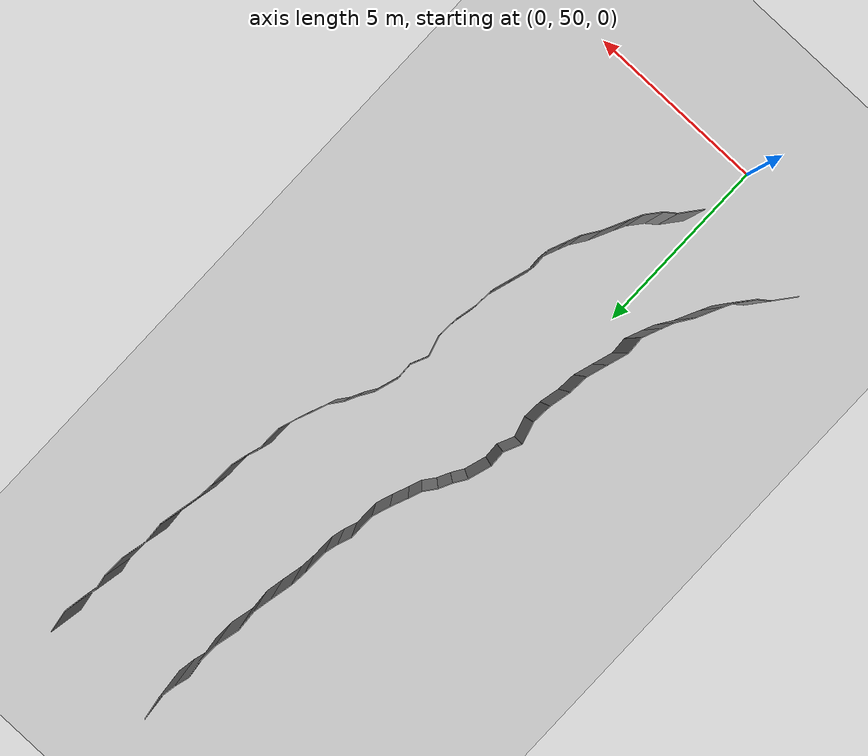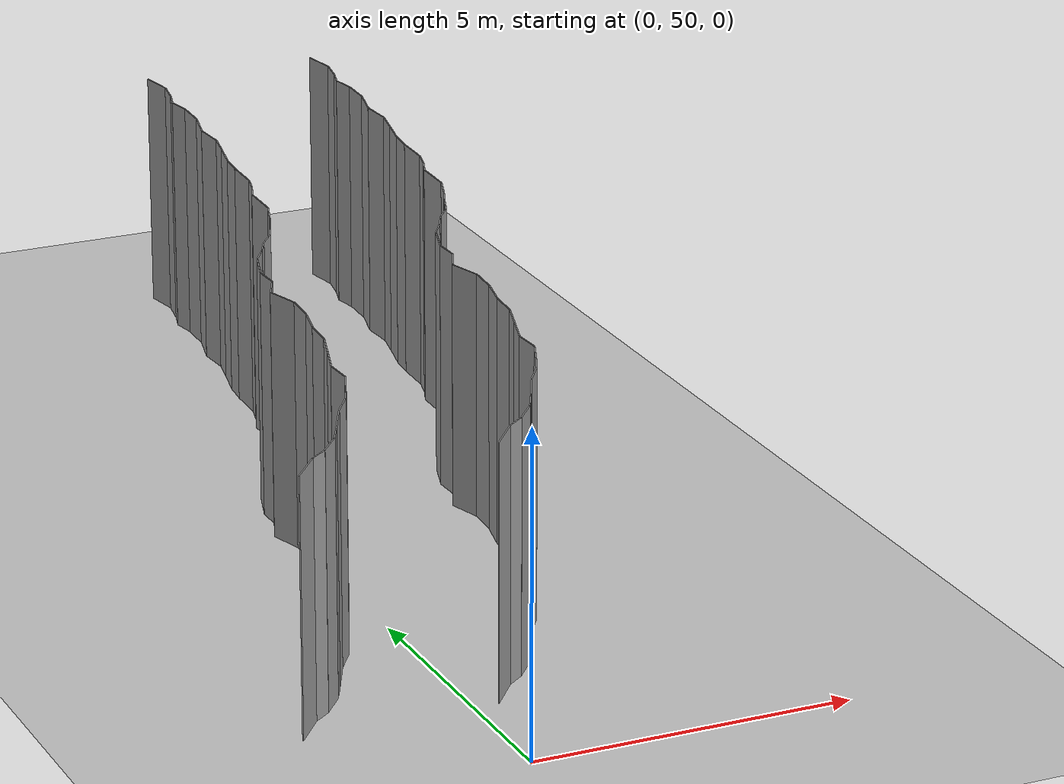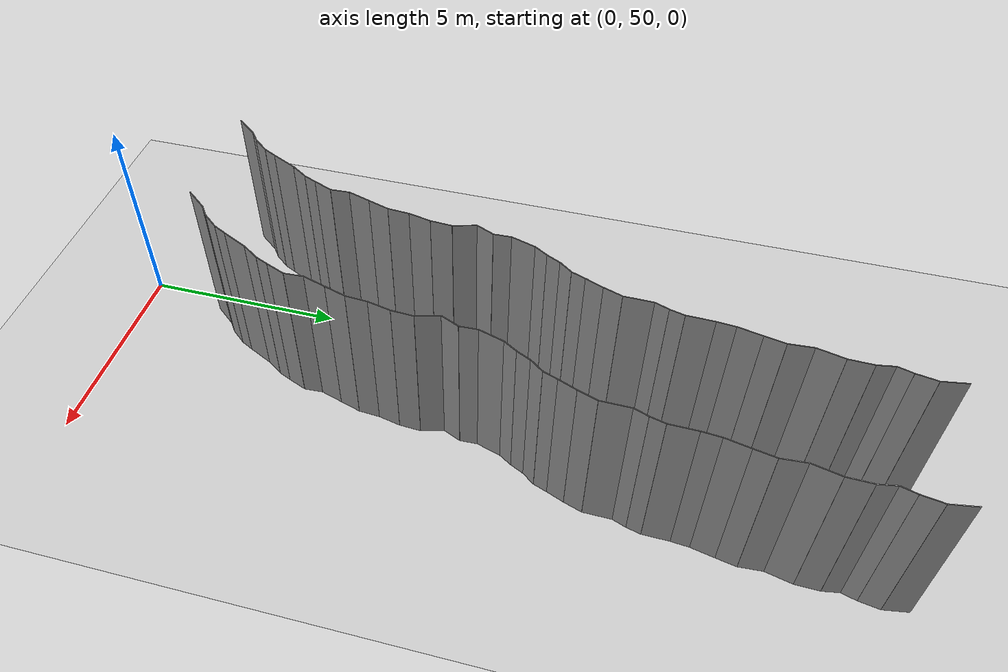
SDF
<sdf version="1.6">
 <world name="default">
  <model name="ground_plane">
   <static>1</static>
   <link name="link">
    <collision name="collision">
     <geometry><plane><normal>0 0 1</normal><size>200 200</size></plane></geometry>
     <surface><friction><ode><mu>100</mu><mu2>50</mu2></ode></friction></surface>
    </collision>
    <visual name="visual">
     <cast_shadows>0</cast_shadows>
     <geometry><plane><normal>0 0 1</normal><size>200 200</size></plane></geometry>
     <material>
      <script><uri>file://media/materials/scripts/gazebo.material</uri><name>Gazebo/Grey</name></script>
     </material>
    </visual>
   </link>
   <pose>0 100 0 0 -0 0</pose>
  </model>
  <model name="wall_224">
   <static>1</static>
   <pose>-2.3994176689398614 52.211991808700375 2 0 0 -0.6715285880857808</pose>
   <link name="link">
    <collision name="collision"><geometry><box><size>0.02 0.660935427679 4</size></box></geometry></collision>
    <visual name="visual">
     <material>
      <script><name>Gazebo/Grey</name><uri>file://media/materials/scripts/gazebo.material</uri></script>
     </material>
     <geometry><box><size>0.02 0.660935427679 4</size></box></geometry>
    </visual>
   </link>
  </model>
  <model name="wall_225">
   <static>1</static>
   <pose>0.6005823310601386 52.211991808700375 2 0 0 -0.6715285880857808</pose>
   <link name="link">
    <collision name="collision"><geometry><box><size>0.02 0.660935427679 4</size></box></geometry></collision>
    <visual name="visual">
     <material>
      <script><name>Gazebo/Grey</name><uri>file://media/materials/scripts/gazebo.material</uri></script>
     </material>
     <geometry><box><size>0.02 0.660935427679 4</size></box></geometry>
    </visual>
   </link>
  </model>
  <model name="wall_226">
   <static>1</static>
   <pose>-2.0620673733217263 52.57103883010184 2 0 0 -0.9199075902984098</pose>
   <link name="link">
    <collision name="collision"><geometry><box><size>0.02 0.331190981037 4</size></box></geometry></collision>
    <visual name="visual">
     <material>
      <script><name>Gazebo/Grey</name><uri>file://media/materials/scripts/gazebo.material</uri></script>
     </material>
     <geometry><box><size>0.02 0.331190981037 4</size></box></geometry>
    </visual>
   </link>
  </model>
  <model name="wall_227">
   <static>1</static>
   <pose>0.9379326266782737 52.57103883010184 2 0 0 -0.9199075902984098</pose>
   <link name="link">
    <collision name="collision"><geometry><box><size>0.02 0.331190981037 4</size></box></geometry></collision>
    <visual name="visual">
     <material>
      <script><name>Gazebo/Grey</name><uri>file://media/materials/scripts/gazebo.material</uri></script>
     </material>
     <geometry><box><size>0.02 0.331190981037 4</size></box></geometry>
    </visual>
   </link>
  </model>
  <model name="wall_228">
   <static>1</static>
   <pose>-1.7783138286931668 52.85751243669905 2 0 0 -0.6848217590931277</pose>
   <link name="link">
    <collision name="collision"><geometry><box><size>0.02 0.480652558105 4</size></box></geometry></collision>
    <visual name="visual">
     <material>
      <script><name>Gazebo/Grey</name><uri>file://media/materials/scripts/gazebo.material</uri></script>
     </material>
     <geometry><box><size>0.02 0.480652558105 4</size></box></geometry>
    </visual>
   </link>
  </model>
  <model name="wall_229">
   <static>1</static>
   <pose>1.2216861713068332 52.85751243669905 2 0 0 -0.6848217590931277</pose>
   <link name="link">
    <collision name="collision"><geometry><box><size>0.02 0.480652558105 4</size></box></geometry></collision>
    <visual name="visual">
     <material>
      <script><name>Gazebo/Grey</name><uri>file://media/materials/scripts/gazebo.material</uri></script>
     </material>
     <geometry><box><size>0.02 0.480652558105 4</size></box></geometry>
    </visual>
   </link>
  </model>
  <model name="wall_230">
   <static>1</static>
   <pose>-1.5460869767697503 53.20290195619431 2 0 0 -0.46659455117750903</pose>
   <link name="link">
    <collision name="collision"><geometry><box><size>0.02 0.356618992333 4</size></box></geometry></collision>
    <visual name="visual">
     <material>
      <script><name>Gazebo/Grey</name><uri>file://media/materials/scripts/gazebo.material</uri></script>
     </material>
     <geometry><box><size>0.02 0.356618992333 4</size></box></geometry>
    </visual>
   </link>
  </model>
  <model name="wall_231">
   <static>1</static>
   <pose>1.4539130232302497 53.20290195619431 2 0 0 -0.46659455117750903</pose>
   <link name="link">
    <collision name="collision"><geometry><box><size>0.02 0.356618992333 4</size></box></geometry></collision>
    <visual name="visual">
     <material>
      <script><name>Gazebo/Grey</name><uri>file://media/materials/scripts/gazebo.material</uri></script>
     </material>
     <geometry><box><size>0.02 0.356618992333 4</size></box></geometry>
    </visual>
   </link>
  </model>
  <model name="wall_232">
   <static>1</static>
   <pose>-1.3152750497182693 53.67421501934724 2 0 0 -0.44962529132112466</pose>
   <link name="link">
    <collision name="collision"><geometry><box><size>0.02 0.693005588197 4</size></box></geometry></collision>
    <visual name="visual">
     <material>
      <script><name>Gazebo/Grey</name><uri>file://media/materials/scripts/gazebo.material</uri></script>
     </material>
     <geometry><box><size>0.02 0.693005588197 4</size></box></geometry>
    </visual>
   </link>
  </model>
  <model name="wall_233">
   <static>1</static>
   <pose>1.6847249502817307 53.67421501934724 2 0 0 -0.44962529132112466</pose>
   <link name="link">
    <collision name="collision"><geometry><box><size>0.02 0.693005588197 4</size></box></geometry></collision>
    <visual name="visual">
     <material>
      <script><name>Gazebo/Grey</name><uri>file://media/materials/scripts/gazebo.material</uri></script>
     </material>
     <geometry><box><size>0.02 0.693005588197 4</size></box></geometry>
    </visual>
   </link>
  </model>
  <model name="wall_234">
   <static>1</static>
   <pose>-1.029204470216929 54.18834172617757 2 0 0 -0.5906094558521587</pose>
   <link name="link">
    <collision name="collision"><geometry><box><size>0.02 0.486545785832 4</size></box></geometry></collision>
    <visual name="visual">
     <material>
      <script><name>Gazebo/Grey</name><uri>file://media/materials/scripts/gazebo.material</uri></script>
     </material>
     <geometry><box><size>0.02 0.486545785832 4</size></box></geometry>
    </visual>
   </link>
  </model>
  <model name="wall_235">
   <static>1</static>
   <pose>1.970795529783071 54.18834172617757 2 0 0 -0.5906094558521587</pose>
   <link name="link">
    <collision name="collision"><geometry><box><size>0.02 0.486545785832 4</size></box></geometry></collision>
    <visual name="visual">
     <material>
      <script><name>Gazebo/Grey</name><uri>file://media/materials/scripts/gazebo.material</uri></script>
     </material>
     <geometry><box><size>0.02 0.486545785832 4</size></box></geometry>
    </visual>
   </link>
  </model>
  <model name="wall_236">
   <static>1</static>
   <pose>-0.8254921138399317 54.5490444959066 2 0 0 -0.4062387491988969</pose>
   <link name="link">
    <collision name="collision"><geometry><box><size>0.02 0.345389949568 4</size></box></geometry></collision>
    <visual name="visual">
     <material>
      <script><name>Gazebo/Grey</name><uri>file://media/materials/scripts/gazebo.material</uri></script>
     </material>
     <geometry><box><size>0.02 0.345389949568 4</size></box></geometry>
    </visual>
   </link>
  </model>
  <model name="wall_237">
   <static>1</static>
   <pose>2.174507886160068 54.5490444959066 2 0 0 -0.4062387491988969</pose>
   <link name="link">
    <collision name="collision"><geometry><box><size>0.02 0.345389949568 4</size></box></geometry></collision>
    <visual name="visual">
     <material>
      <script><name>Gazebo/Grey</name><uri>file://media/materials/scripts/gazebo.material</uri></script>
     </material>
     <geometry><box><size>0.02 0.345389949568 4</size></box></geometry>
    </visual>
   </link>
  </model>
  <model name="wall_238">
   <static>1</static>
   <pose>-0.6621759070944445 54.94048579975645 2 0 0 -0.3877212224720648</pose>
   <link name="link">
    <collision name="collision"><geometry><box><size>0.02 0.502933970677 4</size></box></geometry></collision>
    <visual name="visual">
     <material>
      <script><name>Gazebo/Grey</name><uri>file://media/materials/scripts/gazebo.material</uri></script>
     </material>
     <geometry><box><size>0.02 0.502933970677 4</size></box></geometry>
    </visual>
   </link>
  </model>
  <model name="wall_239">
   <static>1</static>
   <pose>2.3378240929055556 54.94048579975645 2 0 0 -0.3877212224720648</pose>
   <link name="link">
    <collision name="collision"><geometry><box><size>0.02 0.502933970677 4</size></box></geometry></collision>
    <visual name="visual">
     <material>
      <script><name>Gazebo/Grey</name><uri>file://media/materials/scripts/gazebo.material</uri></script>
     </material>
     <geometry><box><size>0.02 0.502933970677 4</size></box></geometry>
    </visual>
   </link>
  </model>
  <model name="wall_240">
   <static>1</static>
   <pose>-0.5793212029630783 55.4080281731289 2 0 0 0.05200989084188044</pose>
   <link name="link">
    <collision name="collision"><geometry><box><size>0.02 0.47011774229 4</size></box></geometry></collision>
    <visual name="visual">
     <material>
      <script><name>Gazebo/Grey</name><uri>file://media/materials/scripts/gazebo.material</uri></script>
     </material>
     <geometry><box><size>0.02 0.47011774229 4</size></box></geometry>
    </visual>
   </link>
  </model>
  <model name="wall_241">
   <static>1</static>
   <pose>2.4206787970369215 55.4080281731289 2 0 0 0.05200989084188044</pose>
   <link name="link">
    <collision name="collision"><geometry><box><size>0.02 0.47011774229 4</size></box></geometry></collision>
    <visual name="visual">
     <material>
      <script><name>Gazebo/Grey</name><uri>file://media/materials/scripts/gazebo.material</uri></script>
     </material>
     <geometry><box><size>0.02 0.47011774229 4</size></box></geometry>
    </visual>
   </link>
  </model>
  <model name="wall_242">
   <static>1</static>
   <pose>-0.5043435268382849 55.922222398369854 2 0 0 -0.30245587119576883</pose>
   <link name="link">
    <collision name="collision"><geometry><box><size>0.02 0.58548272599 4</size></box></geometry></collision>
    <visual name="visual">
     <material>
      <script><name>Gazebo/Grey</name><uri>file://media/materials/scripts/gazebo.material</uri></script>
     </material>
     <geometry><box><size>0.02 0.58548272599 4</size></box></geometry>
    </visual>
   </link>
  </model>
  <model name="wall_243">
   <static>1</static>
   <pose>2.495656473161715 55.922222398369854 2 0 0 -0.30245587119576883</pose>
   <link name="link">
    <collision name="collision"><geometry><box><size>0.02 0.58548272599 4</size></box></geometry></collision>
    <visual name="visual">
     <material>
      <script><name>Gazebo/Grey</name><uri>file://media/materials/scripts/gazebo.material</uri></script>
     </material>
     <geometry><box><size>0.02 0.58548272599 4</size></box></geometry>
    </visual>
   </link>
  </model>
  <model name="wall_244">
   <static>1</static>
   <pose>-0.33619189387096793 56.46374155675779 2 0 0 -0.29960844605336207</pose>
   <link name="link">
    <collision name="collision"><geometry><box><size>0.02 0.54856951546 4</size></box></geometry></collision>
    <visual name="visual">
     <material>
      <script><name>Gazebo/Grey</name><uri>file://media/materials/scripts/gazebo.material</uri></script>
     </material>
     <geometry><box><size>0.02 0.54856951546 4</size></box></geometry>
    </visual>
   </link>
  </model>
  <model name="wall_245">
   <static>1</static>
   <pose>2.663808106129032 56.46374155675779 2 0 0 -0.29960844605336207</pose>
   <link name="link">
    <collision name="collision"><geometry><box><size>0.02 0.54856951546 4</size></box></geometry></collision>
    <visual name="visual">
     <material>
      <script><name>Gazebo/Grey</name><uri>file://media/materials/scripts/gazebo.material</uri></script>
     </material>
     <geometry><box><size>0.02 0.54856951546 4</size></box></geometry>
    </visual>
   </link>
  </model>
  <model name="wall_246">
   <static>1</static>
   <pose>-0.2365675665083288 56.99141143088639 2 0 0 -0.07017812733628209</pose>
   <link name="link">
    <collision name="collision"><geometry><box><size>0.02 0.532518618255 4</size></box></geometry></collision>
    <visual name="visual">
     <material>
      <script><name>Gazebo/Grey</name><uri>file://media/materials/scripts/gazebo.material</uri></script>
     </material>
     <geometry><box><size>0.02 0.532518618255 4</size></box></geometry>
    </visual>
   </link>
  </model>
  <model name="wall_247">
   <static>1</static>
   <pose>2.7634324334916713 56.99141143088639 2 0 0 -0.07017812733628209</pose>
   <link name="link">
    <collision name="collision"><geometry><box><size>0.02 0.532518618255 4</size></box></geometry></collision>
    <visual name="visual">
     <material>
      <script><name>Gazebo/Grey</name><uri>file://media/materials/scripts/gazebo.material</uri></script>
     </material>
     <geometry><box><size>0.02 0.532518618255 4</size></box></geometry>
    </visual>
   </link>
  </model>
  <model name="wall_248">
   <static>1</static>
   <pose>-0.15761270786326534 57.53592670218643 2 0 0 -0.2128679786448468</pose>
   <link name="link">
    <collision name="collision"><geometry><box><size>0.02 0.570704046467 4</size></box></geometry></collision>
    <visual name="visual">
     <material>
      <script><name>Gazebo/Grey</name><uri>file://media/materials/scripts/gazebo.material</uri></script>
     </material>
     <geometry><box><size>0.02 0.570704046467 4</size></box></geometry>
    </visual>
   </link>
  </model>
  <model name="wall_249">
   <static>1</static>
   <pose>2.842387292136735 57.53592670218643 2 0 0 -0.2128679786448468</pose>
   <link name="link">
    <collision name="collision"><geometry><box><size>0.02 0.570704046467 4</size></box></geometry></collision>
    <visual name="visual">
     <material>
      <script><name>Gazebo/Grey</name><uri>file://media/materials/scripts/gazebo.material</uri></script>
     </material>
     <geometry><box><size>0.02 0.570704046467 4</size></box></geometry>
    </visual>
   </link>
  </model>
  <model name="wall_250">
   <static>1</static>
   <pose>-0.08074077265795965 58.083341451052256 2 0 0 -0.06169854668923906</pose>
   <link name="link">
    <collision name="collision"><geometry><box><size>0.02 0.538030530952 4</size></box></geometry></collision>
    <visual name="visual">
     <material>
      <script><name>Gazebo/Grey</name><uri>file://media/materials/scripts/gazebo.material</uri></script>
     </material>
     <geometry><box><size>0.02 0.538030530952 4</size></box></geometry>
    </visual>
   </link>
  </model>
  <model name="wall_251">
   <static>1</static>
   <pose>2.9192592273420406 58.083341451052256 2 0 0 -0.06169854668923906</pose>
   <link name="link">
    <collision name="collision"><geometry><box><size>0.02 0.538030530952 4</size></box></geometry></collision>
    <visual name="visual">
     <material>
      <script><name>Gazebo/Grey</name><uri>file://media/materials/scripts/gazebo.material</uri></script>
     </material>
     <geometry><box><size>0.02 0.538030530952 4</size></box></geometry>
    </visual>
   </link>
  </model>
  <model name="wall_252">
   <static>1</static>
   <pose>-0.14494923535174797 58.62981228608255 2 0 0 0.28287198370729333</pose>
   <link name="link">
    <collision name="collision"><geometry><box><size>0.02 0.578943368254 4</size></box></geometry></collision>
    <visual name="visual">
     <material>
      <script><name>Gazebo/Grey</name><uri>file://media/materials/scripts/gazebo.material</uri></script>
     </material>
     <geometry><box><size>0.02 0.578943368254 4</size></box></geometry>
    </visual>
   </link>
  </model>
  <model name="wall_253">
   <static>1</static>
   <pose>2.855050764648252 58.62981228608255 2 0 0 0.28287198370729333</pose>
   <link name="link">
    <collision name="collision"><geometry><box><size>0.02 0.578943368254 4</size></box></geometry></collision>
    <visual name="visual">
     <material>
      <script><name>Gazebo/Grey</name><uri>file://media/materials/scripts/gazebo.material</uri></script>
     </material>
     <geometry><box><size>0.02 0.578943368254 4</size></box></geometry>
    </visual>
   </link>
  </model>
  <model name="wall_254">
   <static>1</static>
   <pose>-0.12595361144937484 59.12698884295465 2 0 0 -0.4271978578690917</pose>
   <link name="link">
    <collision name="collision"><geometry><box><size>0.02 0.48170930138 4</size></box></geometry></collision>
    <visual name="visual">
     <material>
      <script><name>Gazebo/Grey</name><uri>file://media/materials/scripts/gazebo.material</uri></script>
     </material>
     <geometry><box><size>0.02 0.48170930138 4</size></box></geometry>
    </visual>
   </link>
  </model>
  <model name="wall_255">
   <static>1</static>
   <pose>2.8740463885506253 59.12698884295465 2 0 0 -0.4271978578690917</pose>
   <link name="link">
    <collision name="collision"><geometry><box><size>0.02 0.48170930138 4</size></box></geometry></collision>
    <visual name="visual">
     <material>
      <script><name>Gazebo/Grey</name><uri>file://media/materials/scripts/gazebo.material</uri></script>
     </material>
     <geometry><box><size>0.02 0.48170930138 4</size></box></geometry>
    </visual>
   </link>
  </model>
  <model name="wall_256">
   <static>1</static>
   <pose>-0.03470344439655227 59.56204394707187 2 0 0 0.0395503670361402</pose>
   <link name="link">
    <collision name="collision"><geometry><box><size>0.02 0.432029825355 4</size></box></geometry></collision>
    <visual name="visual">
     <material>
      <script><name>Gazebo/Grey</name><uri>file://media/materials/scripts/gazebo.material</uri></script>
     </material>
     <geometry><box><size>0.02 0.432029825355 4</size></box></geometry>
    </visual>
   </link>
  </model>
  <model name="wall_257">
   <static>1</static>
   <pose>2.9652965556034476 59.56204394707187 2 0 0 0.0395503670361402</pose>
   <link name="link">
    <collision name="collision"><geometry><box><size>0.02 0.432029825355 4</size></box></geometry></collision>
    <visual name="visual">
     <material>
      <script><name>Gazebo/Grey</name><uri>file://media/materials/scripts/gazebo.material</uri></script>
     </material>
     <geometry><box><size>0.02 0.432029825355 4</size></box></geometry>
    </visual>
   </link>
  </model>
  <model name="wall_258">
   <static>1</static>
   <pose>0.04950261593765298 60.07542139169327 2 0 0 -0.3021765440559707</pose>
   <link name="link">
    <collision name="collision"><geometry><box><size>0.02 0.623304198377 4</size></box></geometry></collision>
    <visual name="visual">
     <material>
      <script><name>Gazebo/Grey</name><uri>file://media/materials/scripts/gazebo.material</uri></script>
     </material>
     <geometry><box><size>0.02 0.623304198377 4</size></box></geometry>
    </visual>
   </link>
  </model>
  <model name="wall_259">
   <static>1</static>
   <pose>3.049502615937653 60.07542139169327 2 0 0 -0.3021765440559707</pose>
   <link name="link">
    <collision name="collision"><geometry><box><size>0.02 0.623304198377 4</size></box></geometry></collision>
    <visual name="visual">
     <material>
      <script><name>Gazebo/Grey</name><uri>file://media/materials/scripts/gazebo.material</uri></script>
     </material>
     <geometry><box><size>0.02 0.623304198377 4</size></box></geometry>
    </visual>
   </link>
  </model>
  <model name="wall_260">
   <static>1</static>
   <pose>0.24195621437413084 60.53049637044076 2 0 0 -0.5642464686701131</pose>
   <link name="link">
    <collision name="collision"><geometry><box><size>0.02 0.372887684108 4</size></box></geometry></collision>
    <visual name="visual">
     <material>
      <script><name>Gazebo/Grey</name><uri>file://media/materials/scripts/gazebo.material</uri></script>
     </material>
     <geometry><box><size>0.02 0.372887684108 4</size></box></geometry>
    </visual>
   </link>
  </model>
  <model name="wall_261">
   <static>1</static>
   <pose>3.241956214374131 60.53049637044076 2 0 0 -0.5642464686701131</pose>
   <link name="link">
    <collision name="collision"><geometry><box><size>0.02 0.372887684108 4</size></box></geometry></collision>
    <visual name="visual">
     <material>
      <script><name>Gazebo/Grey</name><uri>file://media/materials/scripts/gazebo.material</uri></script>
     </material>
     <geometry><box><size>0.02 0.372887684108 4</size></box></geometry>
    </visual>
   </link>
  </model>
  <model name="wall_262">
   <static>1</static>
   <pose>0.42297124363763994 60.853765168636535 2 0 0 -0.4561183947226941</pose>
   <link name="link">
    <collision name="collision"><geometry><box><size>0.02 0.369193596141 4</size></box></geometry></collision>
    <visual name="visual">
     <material>
      <script><name>Gazebo/Grey</name><uri>file://media/materials/scripts/gazebo.material</uri></script>
     </material>
     <geometry><box><size>0.02 0.369193596141 4</size></box></geometry>
    </visual>
   </link>
  </model>
  <model name="wall_263">
   <static>1</static>
   <pose>3.42297124363764 60.853765168636535 2 0 0 -0.4561183947226941</pose>
   <link name="link">
    <collision name="collision"><geometry><box><size>0.02 0.369193596141 4</size></box></geometry></collision>
    <visual name="visual">
     <material>
      <script><name>Gazebo/Grey</name><uri>file://media/materials/scripts/gazebo.material</uri></script>
     </material>
     <geometry><box><size>0.02 0.369193596141 4</size></box></geometry>
    </visual>
   </link>
  </model>
  <model name="wall_264">
   <static>1</static>
   <pose>0.6213531830424113 61.172838999744066 2 0 0 -0.6520506079284731</pose>
   <link name="link">
    <collision name="collision"><geometry><box><size>0.02 0.3858596344 4</size></box></geometry></collision>
    <visual name="visual">
     <material>
      <script><name>Gazebo/Grey</name><uri>file://media/materials/scripts/gazebo.material</uri></script>
     </material>
     <geometry><box><size>0.02 0.3858596344 4</size></box></geometry>
    </visual>
   </link>
  </model>
  <model name="wall_265">
   <static>1</static>
   <pose>3.6213531830424115 61.172838999744066 2 0 0 -0.6520506079284731</pose>
   <link name="link">
    <collision name="collision"><geometry><box><size>0.02 0.3858596344 4</size></box></geometry></collision>
    <visual name="visual">
     <material>
      <script><name>Gazebo/Grey</name><uri>file://media/materials/scripts/gazebo.material</uri></script>
     </material>
     <geometry><box><size>0.02 0.3858596344 4</size></box></geometry>
    </visual>
   </link>
  </model>
  <model name="wall_266">
   <static>1</static>
   <pose>0.8006976944177646 61.49390780209888 2 0 0 -0.3555060043697351</pose>
   <link name="link">
    <collision name="collision"><geometry><box><size>0.02 0.357814462842 4</size></box></geometry></collision>
    <visual name="visual">
     <material>
      <script><name>Gazebo/Grey</name><uri>file://media/materials/scripts/gazebo.material</uri></script>
     </material>
     <geometry><box><size>0.02 0.357814462842 4</size></box></geometry>
    </visual>
   </link>
  </model>
  <model name="wall_267">
   <static>1</static>
   <pose>3.8006976944177646 61.49390780209888 2 0 0 -0.3555060043697351</pose>
   <link name="link">
    <collision name="collision"><geometry><box><size>0.02 0.357814462842 4</size></box></geometry></collision>
    <visual name="visual">
     <material>
      <script><name>Gazebo/Grey</name><uri>file://media/materials/scripts/gazebo.material</uri></script>
     </material>
     <geometry><box><size>0.02 0.357814462842 4</size></box></geometry>
    </visual>
   </link>
  </model>
  <model name="wall_268">
   <static>1</static>
   <pose>0.9506513653324831 61.87659043294358 2 0 0 -0.38729496643015454</pose>
   <link name="link">
    <collision name="collision"><geometry><box><size>0.02 0.464314646622 4</size></box></geometry></collision>
    <visual name="visual">
     <material>
      <script><name>Gazebo/Grey</name><uri>file://media/materials/scripts/gazebo.material</uri></script>
     </material>
     <geometry><box><size>0.02 0.464314646622 4</size></box></geometry>
    </visual>
   </link>
  </model>
  <model name="wall_269">
   <static>1</static>
   <pose>3.950651365332483 61.87659043294358 2 0 0 -0.38729496643015454</pose>
   <link name="link">
    <collision name="collision"><geometry><box><size>0.02 0.464314646622 4</size></box></geometry></collision>
    <visual name="visual">
     <material>
      <script><name>Gazebo/Grey</name><uri>file://media/materials/scripts/gazebo.material</uri></script>
     </material>
     <geometry><box><size>0.02 0.464314646622 4</size></box></geometry>
    </visual>
   </link>
  </model>
  <model name="wall_270">
   <static>1</static>
   <pose>1.1159555542005344 62.31704942219688 2 0 0 -0.3315218221681233</pose>
   <link name="link">
    <collision name="collision"><geometry><box><size>0.02 0.476964851913 4</size></box></geometry></collision>
    <visual name="visual">
     <material>
      <script><name>Gazebo/Grey</name><uri>file://media/materials/scripts/gazebo.material</uri></script>
     </material>
     <geometry><box><size>0.02 0.476964851913 4</size></box></geometry>
    </visual>
   </link>
  </model>
  <model name="wall_271">
   <static>1</static>
   <pose>4.115955554200534 62.31704942219688 2 0 0 -0.3315218221681233</pose>
   <link name="link">
    <collision name="collision"><geometry><box><size>0.02 0.476964851913 4</size></box></geometry></collision>
    <visual name="visual">
     <material>
      <script><name>Gazebo/Grey</name><uri>file://media/materials/scripts/gazebo.material</uri></script>
     </material>
     <geometry><box><size>0.02 0.476964851913 4</size></box></geometry>
    </visual>
   </link>
  </model>
  <model name="wall_272">
   <static>1</static>
   <pose>1.1982326444536933 62.89120408575837 2 0 0 -0.01335116327255412</pose>
   <link name="link">
    <collision name="collision"><geometry><box><size>0.02 0.697378265888 4</size></box></geometry></collision>
    <visual name="visual">
     <material>
      <script><name>Gazebo/Grey</name><uri>file://media/materials/scripts/gazebo.material</uri></script>
     </material>
     <geometry><box><size>0.02 0.697378265888 4</size></box></geometry>
    </visual>
   </link>
  </model>
  <model name="wall_273">
   <static>1</static>
   <pose>4.198232644453693 62.89120408575837 2 0 0 -0.01335116327255412</pose>
   <link name="link">
    <collision name="collision"><geometry><box><size>0.02 0.697378265888 4</size></box></geometry></collision>
    <visual name="visual">
     <material>
      <script><name>Gazebo/Grey</name><uri>file://media/materials/scripts/gazebo.material</uri></script>
     </material>
     <geometry><box><size>0.02 0.697378265888 4</size></box></geometry>
    </visual>
   </link>
  </model>
  <model name="wall_274">
   <static>1</static>
   <pose>1.2661166223406954 63.40591524918278 2 0 0 -0.3638231975718272</pose>
   <link name="link">
    <collision name="collision"><geometry><box><size>0.02 0.355367440151 4</size></box></geometry></collision>
    <visual name="visual">
     <material>
      <script><name>Gazebo/Grey</name><uri>file://media/materials/scripts/gazebo.material</uri></script>
     </material>
     <geometry><box><size>0.02 0.355367440151 4</size></box></geometry>
    </visual>
   </link>
  </model>
  <model name="wall_275">
   <static>1</static>
   <pose>4.266116622340696 63.40591524918278 2 0 0 -0.3638231975718272</pose>
   <link name="link">
    <collision name="collision"><geometry><box><size>0.02 0.355367440151 4</size></box></geometry></collision>
    <visual name="visual">
     <material>
      <script><name>Gazebo/Grey</name><uri>file://media/materials/scripts/gazebo.material</uri></script>
     </material>
     <geometry><box><size>0.02 0.355367440151 4</size></box></geometry>
    </visual>
   </link>
  </model>
  <model name="wall_276">
   <static>1</static>
   <pose>1.373709563535702 63.74624722771021 2 0 0 -0.24926473016041226</pose>
   <link name="link">
    <collision name="collision"><geometry><box><size>0.02 0.359673795644 4</size></box></geometry></collision>
    <visual name="visual">
     <material>
      <script><name>Gazebo/Grey</name><uri>file://media/materials/scripts/gazebo.material</uri></script>
     </material>
     <geometry><box><size>0.02 0.359673795644 4</size></box></geometry>
    </visual>
   </link>
  </model>
  <model name="wall_277">
   <static>1</static>
   <pose>4.3737095635357015 63.74624722771021 2 0 0 -0.24926473016041226</pose>
   <link name="link">
    <collision name="collision"><geometry><box><size>0.02 0.359673795644 4</size></box></geometry></collision>
    <visual name="visual">
     <material>
      <script><name>Gazebo/Grey</name><uri>file://media/materials/scripts/gazebo.material</uri></script>
     </material>
     <geometry><box><size>0.02 0.359673795644 4</size></box></geometry>
    </visual>
   </link>
  </model>
  <model name="wall_278">
   <static>1</static>
   <pose>1.424861053885441 64.24713491516601 2 0 0 -0.0207780154309592</pose>
   <link name="link">
    <collision name="collision"><geometry><box><size>0.02 0.653358663836 4</size></box></geometry></collision>
    <visual name="visual">
     <material>
      <script><name>Gazebo/Grey</name><uri>file://media/materials/scripts/gazebo.material</uri></script>
     </material>
     <geometry><box><size>0.02 0.653358663836 4</size></box></geometry>
    </visual>
   </link>
  </model>
  <model name="wall_279">
   <static>1</static>
   <pose>4.424861053885441 64.24713491516601 2 0 0 -0.0207780154309592</pose>
   <link name="link">
    <collision name="collision"><geometry><box><size>0.02 0.653358663836 4</size></box></geometry></collision>
    <visual name="visual">
     <material>
      <script><name>Gazebo/Grey</name><uri>file://media/materials/scripts/gazebo.material</uri></script>
     </material>
     <geometry><box><size>0.02 0.653358663836 4</size></box></geometry>
    </visual>
   </link>
  </model>
  <model name="wall_280">
   <static>1</static>
   <pose>1.4511529160385608 64.79121483362832 2 0 0 -0.08944891951584462</pose>
   <link name="link">
    <collision name="collision"><geometry><box><size>0.02 0.43668803376 4</size></box></geometry></collision>
    <visual name="visual">
     <material>
      <script><name>Gazebo/Grey</name><uri>file://media/materials/scripts/gazebo.material</uri></script>
     </material>
     <geometry><box><size>0.02 0.43668803376 4</size></box></geometry>
    </visual>
   </link>
  </model>
  <model name="wall_281">
   <static>1</static>
   <pose>4.451152916038561 64.79121483362832 2 0 0 -0.08944891951584462</pose>
   <link name="link">
    <collision name="collision"><geometry><box><size>0.02 0.43668803376 4</size></box></geometry></collision>
    <visual name="visual">
     <material>
      <script><name>Gazebo/Grey</name><uri>file://media/materials/scripts/gazebo.material</uri></script>
     </material>
     <geometry><box><size>0.02 0.43668803376 4</size></box></geometry>
    </visual>
   </link>
  </model>
  <model name="wall_282">
   <static>1</static>
   <pose>1.5310217844237053 65.2912903274743 2 0 0 -0.21043752291661758</pose>
   <link name="link">
    <collision name="collision"><geometry><box><size>0.02 0.577958776794 4</size></box></geometry></collision>
    <visual name="visual">
     <material>
      <script><name>Gazebo/Grey</name><uri>file://media/materials/scripts/gazebo.material</uri></script>
     </material>
     <geometry><box><size>0.02 0.577958776794 4</size></box></geometry>
    </visual>
   </link>
  </model>
  <model name="wall_283">
   <static>1</static>
   <pose>4.5310217844237055 65.2912903274743 2 0 0 -0.21043752291661758</pose>
   <link name="link">
    <collision name="collision"><geometry><box><size>0.02 0.577958776794 4</size></box></geometry></collision>
    <visual name="visual">
     <material>
      <script><name>Gazebo/Grey</name><uri>file://media/materials/scripts/gazebo.material</uri></script>
     </material>
     <geometry><box><size>0.02 0.577958776794 4</size></box></geometry>
    </visual>
   </link>
  </model>
  <model name="wall_284">
   <static>1</static>
   <pose>1.639421209782643 65.81666352287216 2 0 0 -0.19534068541973387</pose>
   <link name="link">
    <collision name="collision"><geometry><box><size>0.02 0.494950779361 4</size></box></geometry></collision>
    <visual name="visual">
     <material>
      <script><name>Gazebo/Grey</name><uri>file://media/materials/scripts/gazebo.material</uri></script>
     </material>
     <geometry><box><size>0.02 0.494950779361 4</size></box></geometry>
    </visual>
   </link>
  </model>
  <model name="wall_285">
   <static>1</static>
   <pose>4.639421209782643 65.81666352287216 2 0 0 -0.19534068541973387</pose>
   <link name="link">
    <collision name="collision"><geometry><box><size>0.02 0.494950779361 4</size></box></geometry></collision>
    <visual name="visual">
     <material>
      <script><name>Gazebo/Grey</name><uri>file://media/materials/scripts/gazebo.material</uri></script>
     </material>
     <geometry><box><size>0.02 0.494950779361 4</size></box></geometry>
    </visual>
   </link>
  </model>
  <model name="wall_286">
   <static>1</static>
   <pose>1.669013498322987 66.3443414294653 2 0 0 0.06464228350207384</pose>
   <link name="link">
    <collision name="collision"><geometry><box><size>0.02 0.57101081073 4</size></box></geometry></collision>
    <visual name="visual">
     <material>
      <script><name>Gazebo/Grey</name><uri>file://media/materials/scripts/gazebo.material</uri></script>
     </material>
     <geometry><box><size>0.02 0.57101081073 4</size></box></geometry>
    </visual>
   </link>
  </model>
  <model name="wall_287">
   <static>1</static>
   <pose>4.669013498322987 66.3443414294653 2 0 0 0.06464228350207384</pose>
   <link name="link">
    <collision name="collision"><geometry><box><size>0.02 0.57101081073 4</size></box></geometry></collision>
    <visual name="visual">
     <material>
      <script><name>Gazebo/Grey</name><uri>file://media/materials/scripts/gazebo.material</uri></script>
     </material>
     <geometry><box><size>0.02 0.57101081073 4</size></box></geometry>
    </visual>
   </link>
  </model>
  <model name="wall_288">
   <static>1</static>
   <pose>1.7252390324847673 66.94595685541687 2 0 0 -0.2315372156335548</pose>
   <link name="link">
    <collision name="collision"><geometry><box><size>0.02 0.650778812357 4</size></box></geometry></collision>
    <visual name="visual">
     <material>
      <script><name>Gazebo/Grey</name><uri>file://media/materials/scripts/gazebo.material</uri></script>
     </material>
     <geometry><box><size>0.02 0.650778812357 4</size></box></geometry>
    </visual>
   </link>
  </model>
  <model name="wall_289">
   <static>1</static>
   <pose>4.725239032484767 66.94595685541687 2 0 0 -0.2315372156335548</pose>
   <link name="link">
    <collision name="collision"><geometry><box><size>0.02 0.650778812357 4</size></box></geometry></collision>
    <visual name="visual">
     <material>
      <script><name>Gazebo/Grey</name><uri>file://media/materials/scripts/gazebo.material</uri></script>
     </material>
     <geometry><box><size>0.02 0.650778812357 4</size></box></geometry>
    </visual>
   </link>
  </model>
  <model name="wall_290">
   <static>1</static>
   <pose>1.8078607550989887 67.54763475235427 2 0 0 -0.02790191848558238</pose>
   <link name="link">
    <collision name="collision"><geometry><box><size>0.02 0.570165075323 4</size></box></geometry></collision>
    <visual name="visual">
     <material>
      <script><name>Gazebo/Grey</name><uri>file://media/materials/scripts/gazebo.material</uri></script>
     </material>
     <geometry><box><size>0.02 0.570165075323 4</size></box></geometry>
    </visual>
   </link>
  </model>
  <model name="wall_291">
   <static>1</static>
   <pose>4.8078607550989885 67.54763475235427 2 0 0 -0.02790191848558238</pose>
   <link name="link">
    <collision name="collision"><geometry><box><size>0.02 0.570165075323 4</size></box></geometry></collision>
    <visual name="visual">
     <material>
      <script><name>Gazebo/Grey</name><uri>file://media/materials/scripts/gazebo.material</uri></script>
     </material>
     <geometry><box><size>0.02 0.570165075323 4</size></box></geometry>
    </visual>
   </link>
  </model>
  <model name="wall_292">
   <static>1</static>
   <pose>1.780333600760512 68.03553557795523 2 0 0 0.1730919547267631</pose>
   <link name="link">
    <collision name="collision"><geometry><box><size>0.02 0.412015266844 4</size></box></geometry></collision>
    <visual name="visual">
     <material>
      <script><name>Gazebo/Grey</name><uri>file://media/materials/scripts/gazebo.material</uri></script>
     </material>
     <geometry><box><size>0.02 0.412015266844 4</size></box></geometry>
    </visual>
   </link>
  </model>
  <model name="wall_293">
   <static>1</static>
   <pose>4.780333600760512 68.03553557795523 2 0 0 0.1730919547267631</pose>
   <link name="link">
    <collision name="collision"><geometry><box><size>0.02 0.412015266844 4</size></box></geometry></collision>
    <visual name="visual">
     <material>
      <script><name>Gazebo/Grey</name><uri>file://media/materials/scripts/gazebo.material</uri></script>
     </material>
     <geometry><box><size>0.02 0.412015266844 4</size></box></geometry>
    </visual>
   </link>
  </model>
  <model name="wall_294">
   <static>1</static>
   <pose>1.7954071762516097 68.41318529106665 2 0 0 -0.2816507810879572</pose>
   <link name="link">
    <collision name="collision"><geometry><box><size>0.02 0.363774388361 4</size></box></geometry></collision>
    <visual name="visual">
     <material>
      <script><name>Gazebo/Grey</name><uri>file://media/materials/scripts/gazebo.material</uri></script>
     </material>
     <geometry><box><size>0.02 0.363774388361 4</size></box></geometry>
    </visual>
   </link>
  </model>
  <model name="wall_295">
   <static>1</static>
   <pose>4.79540717625161 68.41318529106665 2 0 0 -0.2816507810879572</pose>
   <link name="link">
    <collision name="collision"><geometry><box><size>0.02 0.363774388361 4</size></box></geometry></collision>
    <visual name="visual">
     <material>
      <script><name>Gazebo/Grey</name><uri>file://media/materials/scripts/gazebo.material</uri></script>
     </material>
     <geometry><box><size>0.02 0.363774388361 4</size></box></geometry>
    </visual>
   </link>
  </model>
  <model name="wall_296">
   <static>1</static>
   <pose>1.88810037000049 68.82910344135418 2 0 0 -0.17296225052944508</pose>
   <link name="link">
    <collision name="collision"><geometry><box><size>0.02 0.489702083693 4</size></box></geometry></collision>
    <visual name="visual">
     <material>
      <script><name>Gazebo/Grey</name><uri>file://media/materials/scripts/gazebo.material</uri></script>
     </material>
     <geometry><box><size>0.02 0.489702083693 4</size></box></geometry>
    </visual>
   </link>
  </model>
  <model name="wall_297">
   <static>1</static>
   <pose>4.88810037000049 68.82910344135418 2 0 0 -0.17296225052944508</pose>
   <link name="link">
    <collision name="collision"><geometry><box><size>0.02 0.489702083693 4</size></box></geometry></collision>
    <visual name="visual">
     <material>
      <script><name>Gazebo/Grey</name><uri>file://media/materials/scripts/gazebo.material</uri></script>
     </material>
     <geometry><box><size>0.02 0.489702083693 4</size></box></geometry>
    </visual>
   </link>
  </model>
  <model name="wall_298">
   <static>1</static>
   <pose>1.8819958984118252 69.36669854751419 2 0 0 0.1613516937923944</pose>
   <link name="link">
    <collision name="collision"><geometry><box><size>0.02 0.600595956444 4</size></box></geometry></collision>
    <visual name="visual">
     <material>
      <script><name>Gazebo/Grey</name><uri>file://media/materials/scripts/gazebo.material</uri></script>
     </material>
     <geometry><box><size>0.02 0.600595956444 4</size></box></geometry>
    </visual>
   </link>
  </model>
  <model name="wall_299">
   <static>1</static>
   <pose>4.881995898411825 69.36669854751419 2 0 0 0.1613516937923944</pose>
   <link name="link">
    <collision name="collision"><geometry><box><size>0.02 0.600595956444 4</size></box></geometry></collision>
    <visual name="visual">
     <material>
      <script><name>Gazebo/Grey</name><uri>file://media/materials/scripts/gazebo.material</uri></script>
     </material>
     <geometry><box><size>0.02 0.600595956444 4</size></box></geometry>
    </visual>
   </link>
  </model>
 </world>
</sdf>
